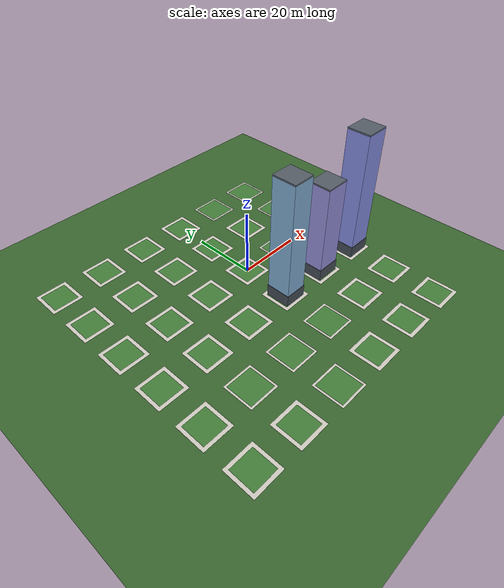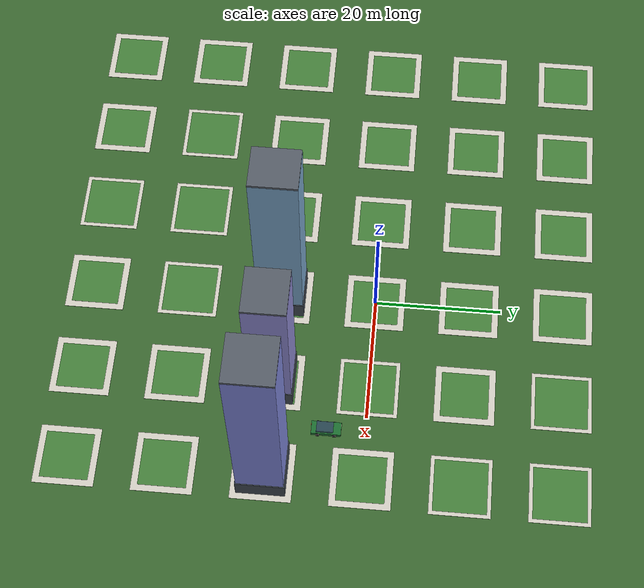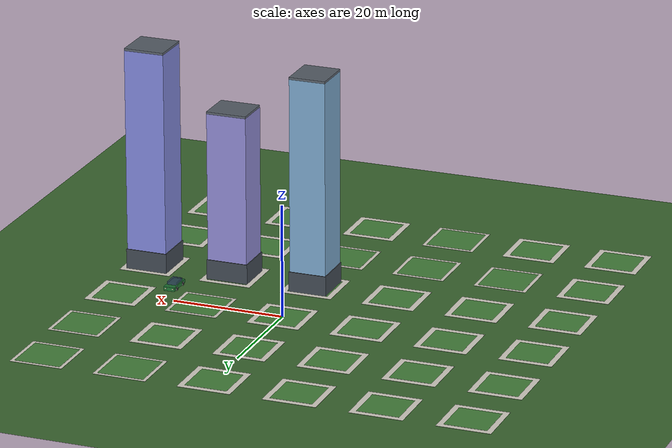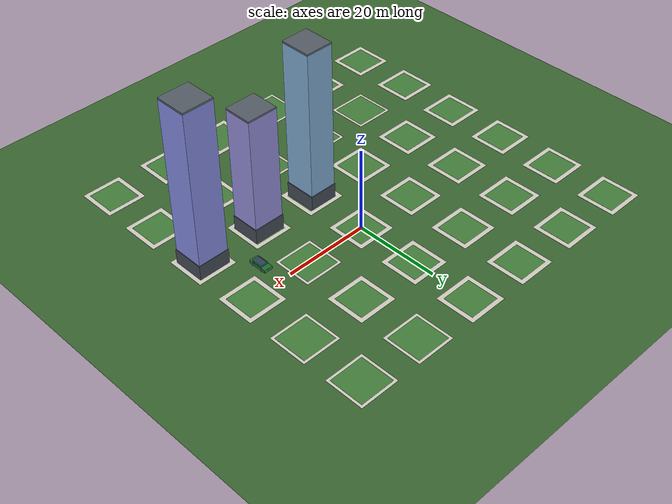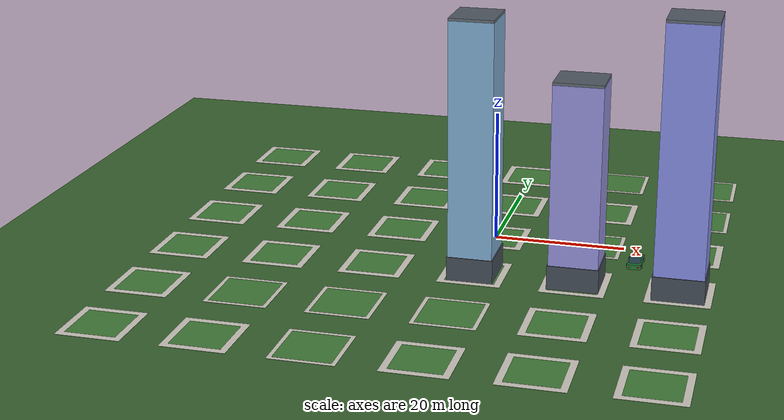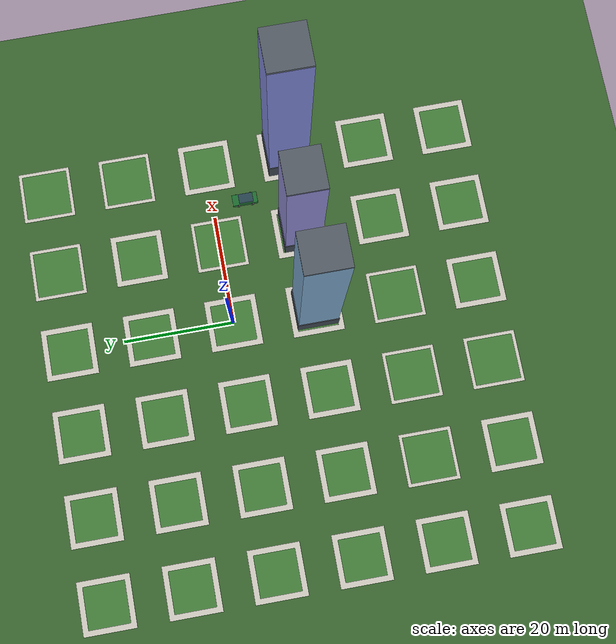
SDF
<sdf version="1.7">
 <world name="city_world">
  <model name="ground_plane">
   <static>true</static>
   <link name="link">
    <collision name="collision">
     <geometry><plane><normal>0 0 1</normal><size>300 300</size></plane></geometry>
     <surface><friction><ode><mu>100</mu><mu2>50</mu2></ode></friction></surface>
    </collision>
    <visual name="visual">
     <geometry><plane><normal>0 0 1</normal><size>300 300</size></plane></geometry>
     <material><ambient>0.24 0.42 0.20 1</ambient><diffuse>0.24 0.42 0.20 1</diffuse></material>
    </visual>
   </link>
  </model>
  <model name="city_sidewalks_and_blocks">
   <static>true</static>
   <link name="link">
    <visual name="curb_0_0">
     <pose>-45.0 -45.0 0.025 0 0 0</pose>
     <geometry><box><size>9.4 9.4 0.04</size></box></geometry>
     <material><ambient>0.82 0.80 0.76 1</ambient><diffuse>0.86 0.84 0.80 1</diffuse></material>
    </visual>
    <visual name="plot_0_0">
     <pose>-45.0 -45.0 0.046 0 0 0</pose>
     <geometry><box><size>7.4 7.4 0.01</size></box></geometry>
     <material><ambient>0.26 0.48 0.22 1</ambient><diffuse>0.28 0.52 0.24 1</diffuse></material>
    </visual>
    <visual name="curb_0_1">
     <pose>-45.0 -30.0 0.025 0 0 0</pose>
     <geometry><box><size>9.4 9.4 0.04</size></box></geometry>
     <material><ambient>0.82 0.80 0.76 1</ambient><diffuse>0.86 0.84 0.80 1</diffuse></material>
    </visual>
    <visual name="plot_0_1">
     <pose>-45.0 -30.0 0.046 0 0 0</pose>
     <geometry><box><size>7.4 7.4 0.01</size></box></geometry>
     <material><ambient>0.26 0.48 0.22 1</ambient><diffuse>0.28 0.52 0.24 1</diffuse></material>
    </visual>
    <visual name="curb_0_2">
     <pose>-45.0 -15.0 0.025 0 0 0</pose>
     <geometry><box><size>9.4 9.4 0.04</size></box></geometry>
     <material><ambient>0.82 0.80 0.76 1</ambient><diffuse>0.86 0.84 0.80 1</diffuse></material>
    </visual>
    <visual name="plot_0_2">
     <pose>-45.0 -15.0 0.046 0 0 0</pose>
     <geometry><box><size>7.4 7.4 0.01</size></box></geometry>
     <material><ambient>0.26 0.48 0.22 1</ambient><diffuse>0.28 0.52 0.24 1</diffuse></material>
    </visual>
    <visual name="curb_0_3">
     <pose>-45.0 0.0 0.025 0 0 0</pose>
     <geometry><box><size>9.4 9.4 0.04</size></box></geometry>
     <material><ambient>0.82 0.80 0.76 1</ambient><diffuse>0.86 0.84 0.80 1</diffuse></material>
    </visual>
    <visual name="plot_0_3">
     <pose>-45.0 0.0 0.046 0 0 0</pose>
     <geometry><box><size>7.4 7.4 0.01</size></box></geometry>
     <material><ambient>0.26 0.48 0.22 1</ambient><diffuse>0.28 0.52 0.24 1</diffuse></material>
    </visual>
    <visual name="curb_0_4">
     <pose>-45.0 15.0 0.025 0 0 0</pose>
     <geometry><box><size>9.4 9.4 0.04</size></box></geometry>
     <material><ambient>0.82 0.80 0.76 1</ambient><diffuse>0.86 0.84 0.80 1</diffuse></material>
    </visual>
    <visual name="plot_0_4">
     <pose>-45.0 15.0 0.046 0 0 0</pose>
     <geometry><box><size>7.4 7.4 0.01</size></box></geometry>
     <material><ambient>0.26 0.48 0.22 1</ambient><diffuse>0.28 0.52 0.24 1</diffuse></material>
    </visual>
    <visual name="curb_0_5">
     <pose>-45.0 30.0 0.025 0 0 0</pose>
     <geometry><box><size>9.4 9.4 0.04</size></box></geometry>
     <material><ambient>0.82 0.80 0.76 1</ambient><diffuse>0.86 0.84 0.80 1</diffuse></material>
    </visual>
    <visual name="plot_0_5">
     <pose>-45.0 30.0 0.046 0 0 0</pose>
     <geometry><box><size>7.4 7.4 0.01</size></box></geometry>
     <material><ambient>0.26 0.48 0.22 1</ambient><diffuse>0.28 0.52 0.24 1</diffuse></material>
    </visual>
    <visual name="curb_1_0">
     <pose>-30.0 -45.0 0.025 0 0 0</pose>
     <geometry><box><size>9.4 9.4 0.04</size></box></geometry>
     <material><ambient>0.82 0.80 0.76 1</ambient><diffuse>0.86 0.84 0.80 1</diffuse></material>
    </visual>
    <visual name="plot_1_0">
     <pose>-30.0 -45.0 0.046 0 0 0</pose>
     <geometry><box><size>7.4 7.4 0.01</size></box></geometry>
     <material><ambient>0.26 0.48 0.22 1</ambient><diffuse>0.28 0.52 0.24 1</diffuse></material>
    </visual>
    <visual name="curb_1_1">
     <pose>-30.0 -30.0 0.025 0 0 0</pose>
     <geometry><box><size>9.4 9.4 0.04</size></box></geometry>
     <material><ambient>0.82 0.80 0.76 1</ambient><diffuse>0.86 0.84 0.80 1</diffuse></material>
    </visual>
    <visual name="plot_1_1">
     <pose>-30.0 -30.0 0.046 0 0 0</pose>
     <geometry><box><size>8.2 8.2 0.01</size></box></geometry>
     <material><ambient>0.22 0.44 0.18 1</ambient><diffuse>0.28 0.52 0.24 1</diffuse></material>
    </visual>
    <visual name="curb_1_2">
     <pose>-30.0 -15.0 0.025 0 0 0</pose>
     <geometry><box><size>9.4 9.4 0.04</size></box></geometry>
     <material><ambient>0.82 0.80 0.76 1</ambient><diffuse>0.86 0.84 0.80 1</diffuse></material>
    </visual>
    <visual name="plot_1_2">
     <pose>-30.0 -15.0 0.046 0 0 0</pose>
     <geometry><box><size>7.4 7.4 0.01</size></box></geometry>
     <material><ambient>0.26 0.48 0.22 1</ambient><diffuse>0.28 0.52 0.24 1</diffuse></material>
    </visual>
    <visual name="curb_1_3">
     <pose>-30.0 0.0 0.025 0 0 0</pose>
     <geometry><box><size>9.4 9.4 0.04</size></box></geometry>
     <material><ambient>0.82 0.80 0.76 1</ambient><diffuse>0.86 0.84 0.80 1</diffuse></material>
    </visual>
    <visual name="plot_1_3">
     <pose>-30.0 0.0 0.046 0 0 0</pose>
     <geometry><box><size>7.4 7.4 0.01</size></box></geometry>
     <material><ambient>0.26 0.48 0.22 1</ambient><diffuse>0.28 0.52 0.24 1</diffuse></material>
    </visual>
    <visual name="curb_1_4">
     <pose>-30.0 15.0 0.025 0 0 0</pose>
     <geometry><box><size>9.4 9.4 0.04</size></box></geometry>
     <material><ambient>0.82 0.80 0.76 1</ambient><diffuse>0.86 0.84 0.80 1</diffuse></material>
    </visual>
    <visual name="plot_1_4">
     <pose>-30.0 15.0 0.046 0 0 0</pose>
     <geometry><box><size>7.4 7.4 0.01</size></box></geometry>
     <material><ambient>0.26 0.48 0.22 1</ambient><diffuse>0.28 0.52 0.24 1</diffuse></material>
    </visual>
    <visual name="curb_1_5">
     <pose>-30.0 30.0 0.025 0 0 0</pose>
     <geometry><box><size>9.4 9.4 0.04</size></box></geometry>
     <material><ambient>0.82 0.80 0.76 1</ambient><diffuse>0.86 0.84 0.80 1</diffuse></material>
    </visual>
    <visual name="plot_1_5">
     <pose>-30.0 30.0 0.046 0 0 0</pose>
     <geometry><box><size>7.4 7.4 0.01</size></box></geometry>
     <material><ambient>0.26 0.48 0.22 1</ambient><diffuse>0.28 0.52 0.24 1</diffuse></material>
    </visual>
    <visual name="curb_2_0">
     <pose>-15.0 -45.0 0.025 0 0 0</pose>
     <geometry><box><size>9.4 9.4 0.04</size></box></geometry>
     <material><ambient>0.82 0.80 0.76 1</ambient><diffuse>0.86 0.84 0.80 1</diffuse></material>
    </visual>
    <visual name="plot_2_0">
     <pose>-15.0 -45.0 0.046 0 0 0</pose>
     <geometry><box><size>8.2 8.2 0.01</size></box></geometry>
     <material><ambient>0.22 0.44 0.18 1</ambient><diffuse>0.28 0.52 0.24 1</diffuse></material>
    </visual>
    <visual name="curb_2_1">
     <pose>-15.0 -30.0 0.025 0 0 0</pose>
     <geometry><box><size>9.4 9.4 0.04</size></box></geometry>
     <material><ambient>0.82 0.80 0.76 1</ambient><diffuse>0.86 0.84 0.80 1</diffuse></material>
    </visual>
    <visual name="plot_2_1">
     <pose>-15.0 -30.0 0.046 0 0 0</pose>
     <geometry><box><size>8.2 8.2 0.01</size></box></geometry>
     <material><ambient>0.22 0.44 0.18 1</ambient><diffuse>0.28 0.52 0.24 1</diffuse></material>
    </visual>
    <visual name="curb_2_2">
     <pose>-15.0 -15.0 0.025 0 0 0</pose>
     <geometry><box><size>9.4 9.4 0.04</size></box></geometry>
     <material><ambient>0.82 0.80 0.76 1</ambient><diffuse>0.86 0.84 0.80 1</diffuse></material>
    </visual>
    <visual name="plot_2_2">
     <pose>-15.0 -15.0 0.046 0 0 0</pose>
     <geometry><box><size>7.4 7.4 0.01</size></box></geometry>
     <material><ambient>0.26 0.48 0.22 1</ambient><diffuse>0.28 0.52 0.24 1</diffuse></material>
    </visual>
    <visual name="curb_2_3">
     <pose>-15.0 0.0 0.025 0 0 0</pose>
     <geometry><box><size>9.4 9.4 0.04</size></box></geometry>
     <material><ambient>0.82 0.80 0.76 1</ambient><diffuse>0.86 0.84 0.80 1</diffuse></material>
    </visual>
    <visual name="plot_2_3">
     <pose>-15.0 0.0 0.046 0 0 0</pose>
     <geometry><box><size>7.4 7.4 0.01</size></box></geometry>
     <material><ambient>0.26 0.48 0.22 1</ambient><diffuse>0.28 0.52 0.24 1</diffuse></material>
    </visual>
    <visual name="curb_2_4">
     <pose>-15.0 15.0 0.025 0 0 0</pose>
     <geometry><box><size>9.4 9.4 0.04</size></box></geometry>
     <material><ambient>0.82 0.80 0.76 1</ambient><diffuse>0.86 0.84 0.80 1</diffuse></material>
    </visual>
    <visual name="plot_2_4">
     <pose>-15.0 15.0 0.046 0 0 0</pose>
     <geometry><box><size>7.4 7.4 0.01</size></box></geometry>
     <material><ambient>0.26 0.48 0.22 1</ambient><diffuse>0.28 0.52 0.24 1</diffuse></material>
    </visual>
    <visual name="curb_2_5">
     <pose>-15.0 30.0 0.025 0 0 0</pose>
     <geometry><box><size>9.4 9.4 0.04</size></box></geometry>
     <material><ambient>0.82 0.80 0.76 1</ambient><diffuse>0.86 0.84 0.80 1</diffuse></material>
    </visual>
    <visual name="plot_2_5">
     <pose>-15.0 30.0 0.046 0 0 0</pose>
     <geometry><box><size>7.4 7.4 0.01</size></box></geometry>
     <material><ambient>0.26 0.48 0.22 1</ambient><diffuse>0.28 0.52 0.24 1</diffuse></material>
    </visual>
    <visual name="curb_3_0">
     <pose>0.0 -45.0 0.025 0 0 0</pose>
     <geometry><box><size>9.4 9.4 0.04</size></box></geometry>
     <material><ambient>0.82 0.80 0.76 1</ambient><diffuse>0.86 0.84 0.80 1</diffuse></material>
    </visual>
    <visual name="plot_3_0">
     <pose>0.0 -45.0 0.046 0 0 0</pose>
     <geometry><box><size>7.4 7.4 0.01</size></box></geometry>
     <material><ambient>0.26 0.48 0.22 1</ambient><diffuse>0.28 0.52 0.24 1</diffuse></material>
    </visual>
    <visual name="curb_3_1">
     <pose>0.0 -30.0 0.025 0 0 0</pose>
     <geometry><box><size>9.4 9.4 0.04</size></box></geometry>
     <material><ambient>0.82 0.80 0.76 1</ambient><diffuse>0.86 0.84 0.80 1</diffuse></material>
    </visual>
    <visual name="plot_3_1">
     <pose>0.0 -30.0 0.046 0 0 0</pose>
     <geometry><box><size>8.2 8.2 0.01</size></box></geometry>
     <material><ambient>0.22 0.44 0.18 1</ambient><diffuse>0.28 0.52 0.24 1</diffuse></material>
    </visual>
    <visual name="curb_3_2">
     <pose>0.0 -15.0 0.025 0 0 0</pose>
     <geometry><box><size>9.4 9.4 0.04</size></box></geometry>
     <material><ambient>0.82 0.80 0.76 1</ambient><diffuse>0.86 0.84 0.80 1</diffuse></material>
    </visual>
    <visual name="plot_3_2">
     <pose>0.0 -15.0 0.046 0 0 0</pose>
     <geometry><box><size>7.4 7.4 0.01</size></box></geometry>
     <material><ambient>0.26 0.48 0.22 1</ambient><diffuse>0.28 0.52 0.24 1</diffuse></material>
    </visual>
    <visual name="curb_3_3">
     <pose>0.0 0.0 0.025 0 0 0</pose>
     <geometry><box><size>9.4 9.4 0.04</size></box></geometry>
     <material><ambient>0.82 0.80 0.76 1</ambient><diffuse>0.86 0.84 0.80 1</diffuse></material>
    </visual>
    <visual name="plot_3_3">
     <pose>0.0 0.0 0.046 0 0 0</pose>
     <geometry><box><size>7.4 7.4 0.01</size></box></geometry>
     <material><ambient>0.26 0.48 0.22 1</ambient><diffuse>0.28 0.52 0.24 1</diffuse></material>
    </visual>
    <visual name="curb_3_4">
     <pose>0.0 15.0 0.025 0 0 0</pose>
     <geometry><box><size>9.4 9.4 0.04</size></box></geometry>
     <material><ambient>0.82 0.80 0.76 1</ambient><diffuse>0.86 0.84 0.80 1</diffuse></material>
    </visual>
    <visual name="plot_3_4">
     <pose>0.0 15.0 0.046 0 0 0</pose>
     <geometry><box><size>7.4 7.4 0.01</size></box></geometry>
     <material><ambient>0.26 0.48 0.22 1</ambient><diffuse>0.28 0.52 0.24 1</diffuse></material>
    </visual>
    <visual name="curb_3_5">
     <pose>0.0 30.0 0.025 0 0 0</pose>
     <geometry><box><size>9.4 9.4 0.04</size></box></geometry>
     <material><ambient>0.82 0.80 0.76 1</ambient><diffuse>0.86 0.84 0.80 1</diffuse></material>
    </visual>
    <visual name="plot_3_5">
     <pose>0.0 30.0 0.046 0 0 0</pose>
     <geometry><box><size>7.4 7.4 0.01</size></box></geometry>
     <material><ambient>0.26 0.48 0.22 1</ambient><diffuse>0.28 0.52 0.24 1</diffuse></material>
    </visual>
    <visual name="curb_4_0">
     <pose>15.0 -45.0 0.025 0 0 0</pose>
     <geometry><box><size>9.4 9.4 0.04</size></box></geometry>
     <material><ambient>0.82 0.80 0.76 1</ambient><diffuse>0.86 0.84 0.80 1</diffuse></material>
    </visual>
    <visual name="plot_4_0">
     <pose>15.0 -45.0 0.046 0 0 0</pose>
     <geometry><box><size>7.4 7.4 0.01</size></box></geometry>
     <material><ambient>0.26 0.48 0.22 1</ambient><diffuse>0.28 0.52 0.24 1</diffuse></material>
    </visual>
    <visual name="curb_4_1">
     <pose>15.0 -30.0 0.025 0 0 0</pose>
     <geometry><box><size>9.4 9.4 0.04</size></box></geometry>
     <material><ambient>0.82 0.80 0.76 1</ambient><diffuse>0.86 0.84 0.80 1</diffuse></material>
    </visual>
    <visual name="plot_4_1">
     <pose>15.0 -30.0 0.046 0 0 0</pose>
     <geometry><box><size>7.4 7.4 0.01</size></box></geometry>
     <material><ambient>0.26 0.48 0.22 1</ambient><diffuse>0.28 0.52 0.24 1</diffuse></material>
    </visual>
    <visual name="curb_4_2">
     <pose>15.0 -15.0 0.025 0 0 0</pose>
     <geometry><box><size>9.4 9.4 0.04</size></box></geometry>
     <material><ambient>0.82 0.80 0.76 1</ambient><diffuse>0.86 0.84 0.80 1</diffuse></material>
    </visual>
    <visual name="plot_4_2">
     <pose>15.0 -15.0 0.046 0 0 0</pose>
     <geometry><box><size>7.4 7.4 0.01</size></box></geometry>
     <material><ambient>0.26 0.48 0.22 1</ambient><diffuse>0.28 0.52 0.24 1</diffuse></material>
    </visual>
    <visual name="curb_4_3">
     <pose>15.0 0.0 0.025 0 0 0</pose>
     <geometry><box><size>9.4 9.4 0.04</size></box></geometry>
     <material><ambient>0.82 0.80 0.76 1</ambient><diffuse>0.86 0.84 0.80 1</diffuse></material>
    </visual>
    <visual name="plot_4_3">
     <pose>15.0 0.0 0.046 0 0 0</pose>
     <geometry><box><size>8.2 8.2 0.01</size></box></geometry>
     <material><ambient>0.22 0.44 0.18 1</ambient><diffuse>0.28 0.52 0.24 1</diffuse></material>
    </visual>
    <visual name="curb_4_4">
     <pose>15.0 15.0 0.025 0 0 0</pose>
     <geometry><box><size>9.4 9.4 0.04</size></box></geometry>
     <material><ambient>0.82 0.80 0.76 1</ambient><diffuse>0.86 0.84 0.80 1</diffuse></material>
    </visual>
    <visual name="plot_4_4">
     <pose>15.0 15.0 0.046 0 0 0</pose>
     <geometry><box><size>7.4 7.4 0.01</size></box></geometry>
     <material><ambient>0.26 0.48 0.22 1</ambient><diffuse>0.28 0.52 0.24 1</diffuse></material>
    </visual>
    <visual name="curb_4_5">
     <pose>15.0 30.0 0.025 0 0 0</pose>
     <geometry><box><size>9.4 9.4 0.04</size></box></geometry>
     <material><ambient>0.82 0.80 0.76 1</ambient><diffuse>0.86 0.84 0.80 1</diffuse></material>
    </visual>
    <visual name="plot_4_5">
     <pose>15.0 30.0 0.046 0 0 0</pose>
     <geometry><box><size>8.2 8.2 0.01</size></box></geometry>
     <material><ambient>0.22 0.44 0.18 1</ambient><diffuse>0.28 0.52 0.24 1</diffuse></material>
    </visual>
    <visual name="curb_5_0">
     <pose>30.0 -45.0 0.025 0 0 0</pose>
     <geometry><box><size>9.4 9.4 0.04</size></box></geometry>
     <material><ambient>0.82 0.80 0.76 1</ambient><diffuse>0.86 0.84 0.80 1</diffuse></material>
    </visual>
    <visual name="plot_5_0">
     <pose>30.0 -45.0 0.046 0 0 0</pose>
     <geometry><box><size>7.4 7.4 0.01</size></box></geometry>
     <material><ambient>0.26 0.48 0.22 1</ambient><diffuse>0.28 0.52 0.24 1</diffuse></material>
    </visual>
    <visual name="curb_5_1">
     <pose>30.0 -30.0 0.025 0 0 0</pose>
     <geometry><box><size>9.4 9.4 0.04</size></box></geometry>
     <material><ambient>0.82 0.80 0.76 1</ambient><diffuse>0.86 0.84 0.80 1</diffuse></material>
    </visual>
    <visual name="plot_5_1">
     <pose>30.0 -30.0 0.046 0 0 0</pose>
     <geometry><box><size>7.4 7.4 0.01</size></box></geometry>
     <material><ambient>0.26 0.48 0.22 1</ambient><diffuse>0.28 0.52 0.24 1</diffuse></material>
    </visual>
    <visual name="curb_5_2">
     <pose>30.0 -15.0 0.025 0 0 0</pose>
     <geometry><box><size>9.4 9.4 0.04</size></box></geometry>
     <material><ambient>0.82 0.80 0.76 1</ambient><diffuse>0.86 0.84 0.80 1</diffuse></material>
    </visual>
    <visual name="plot_5_2">
     <pose>30.0 -15.0 0.046 0 0 0</pose>
     <geometry><box><size>7.4 7.4 0.01</size></box></geometry>
     <material><ambient>0.26 0.48 0.22 1</ambient><diffuse>0.28 0.52 0.24 1</diffuse></material>
    </visual>
    <visual name="curb_5_3">
     <pose>30.0 0.0 0.025 0 0 0</pose>
     <geometry><box><size>9.4 9.4 0.04</size></box></geometry>
     <material><ambient>0.82 0.80 0.76 1</ambient><diffuse>0.86 0.84 0.80 1</diffuse></material>
    </visual>
    <visual name="plot_5_3">
     <pose>30.0 0.0 0.046 0 0 0</pose>
     <geometry><box><size>7.4 7.4 0.01</size></box></geometry>
     <material><ambient>0.26 0.48 0.22 1</ambient><diffuse>0.28 0.52 0.24 1</diffuse></material>
    </visual>
    <visual name="curb_5_4">
     <pose>30.0 15.0 0.025 0 0 0</pose>
     <geometry><box><size>9.4 9.4 0.04</size></box></geometry>
     <material><ambient>0.82 0.80 0.76 1</ambient><diffuse>0.86 0.84 0.80 1</diffuse></material>
    </visual>
    <visual name="plot_5_4">
     <pose>30.0 15.0 0.046 0 0 0</pose>
     <geometry><box><size>8.2 8.2 0.01</size></box></geometry>
     <material><ambient>0.22 0.44 0.18 1</ambient><diffuse>0.28 0.52 0.24 1</diffuse></material>
    </visual>
    <visual name="curb_5_5">
     <pose>30.0 30.0 0.025 0 0 0</pose>
     <geometry><box><size>9.4 9.4 0.04</size></box></geometry>
     <material><ambient>0.82 0.80 0.76 1</ambient><diffuse>0.86 0.84 0.80 1</diffuse></material>
    </visual>
    <visual name="plot_5_5">
     <pose>30.0 30.0 0.046 0 0 0</pose>
     <geometry><box><size>8.2 8.2 0.01</size></box></geometry>
     <material><ambient>0.22 0.44 0.18 1</ambient><diffuse>0.28 0.52 0.24 1</diffuse></material>
    </visual>
   </link>
  </model>
  <model name="car_11">
   <pose>22.5 -6.0 0.01 0 0 1.5708</pose>
   <static>true</static>
   <link name="link">
    <visual name="body">
     <pose>0 0 0.45 0 0 0</pose>
     <geometry><box><size>4.6 2.05 0.7</size></box></geometry>
     <material>
      <ambient>0.12 0.45 0.20 1</ambient>
      <diffuse>0.12 0.45 0.20 1</diffuse>
      <specular>0.5 0.5 0.5 1</specular>
     </material>
    </visual>
    <visual name="cabin">
     <pose>-0.2 0 0.95 0 0 0</pose>
     <geometry><box><size>2.6 1.65 0.75</size></box></geometry>
     <material>
      <ambient>0.22 0.30 0.40 0.85</ambient>
      <diffuse>0.22 0.30 0.40 0.85</diffuse>
      <specular>0.7 0.7 0.7 1</specular>
     </material>
    </visual>
    <visual name="hl_l">
     <pose>2.3 0.65 0.45 0 0 0</pose>
     <geometry><box><size>0.08 0.35 0.18</size></box></geometry>
     <material><ambient>1 1 0.8 1</ambient><diffuse>1 1 0.8 1</diffuse><emissive>1 1 0.8 1</emissive></material>
    </visual>
    <visual name="hl_r">
     <pose>2.3 -0.65 0.45 0 0 0</pose>
     <geometry><box><size>0.08 0.35 0.18</size></box></geometry>
     <material><ambient>1 1 0.8 1</ambient><diffuse>1 1 0.8 1</diffuse><emissive>1 1 0.8 1</emissive></material>
    </visual>
    <visual name="tl_l">
     <pose>-2.3 0.65 0.45 0 0 0</pose>
     <geometry><box><size>0.08 0.35 0.18</size></box></geometry>
     <material>
      <ambient>1 0.1 0.1 1</ambient>
      <diffuse>1 0.1 0.1 1</diffuse>
      <emissive>0.8 0 0 1</emissive>
     </material>
    </visual>
    <visual name="tl_r">
     <pose>-2.3 -0.65 0.45 0 0 0</pose>
     <geometry><box><size>0.08 0.35 0.18</size></box></geometry>
     <material>
      <ambient>1 0.1 0.1 1</ambient>
      <diffuse>1 0.1 0.1 1</diffuse>
      <emissive>0.8 0 0 1</emissive>
     </material>
    </visual>
    <visual name="w_fl">
     <pose>1.3 1.05 0.32 1.5708 0 0</pose>
     <geometry><cylinder><radius>0.32</radius><length>0.22</length></cylinder></geometry>
     <material><ambient>0.1 0.1 0.1 1</ambient><diffuse>0.1 0.1 0.1 1</diffuse></material>
    </visual>
    <visual name="w_fr">
     <pose>1.3 -1.05 0.32 1.5708 0 0</pose>
     <geometry><cylinder><radius>0.32</radius><length>0.22</length></cylinder></geometry>
     <material><ambient>0.1 0.1 0.1 1</ambient><diffuse>0.1 0.1 0.1 1</diffuse></material>
    </visual>
    <visual name="w_bl">
     <pose>-1.3 1.05 0.32 1.5708 0 0</pose>
     <geometry><cylinder><radius>0.32</radius><length>0.22</length></cylinder></geometry>
     <material><ambient>0.1 0.1 0.1 1</ambient><diffuse>0.1 0.1 0.1 1</diffuse></material>
    </visual>
    <visual name="w_br">
     <pose>-1.3 -1.05 0.32 1.5708 0 0</pose>
     <geometry><cylinder><radius>0.32</radius><length>0.22</length></cylinder></geometry>
     <material><ambient>0.1 0.1 0.1 1</ambient><diffuse>0.1 0.1 0.1 1</diffuse></material>
    </visual>
   </link>
  </model>
  <model name="building_16">
   <pose>0.0 -15.0 19.20424167946991 0 0 0</pose>
   <static>true</static>
   <link name="link">
    <collision name="collision"><geometry><box><size>6.51 7.20 38.41</size></box></geometry></collision>
    <visual name="tower">
     <geometry><box><size>6.51 7.20 38.41</size></box></geometry>
     <material>
      <ambient>0.47 0.64 0.78 1</ambient>
      <diffuse>0.47 0.64 0.78 1</diffuse>
      <specular>0.3 0.3 0.3 1</specular>
     </material>
    </visual>
    <visual name="lobby">
     <pose>0 0 -17.40 0 0 0</pose>
     <geometry><box><size>6.81 7.50 3.6</size></box></geometry>
     <material><ambient>0.25 0.28 0.32 1</ambient><diffuse>0.25 0.28 0.32 1</diffuse></material>
    </visual>
    <visual name="parapet">
     <pose>0 0 19.40 0 0 0</pose>
     <geometry><box><size>6.51 7.20 0.4</size></box></geometry>
     <material><ambient>0.35 0.38 0.42 1</ambient><diffuse>0.35 0.38 0.42 1</diffuse></material>
    </visual>
   </link>
  </model>
  <model name="building_22">
   <pose>15.0 -15.0 15.100468209399523 0 0 0</pose>
   <static>true</static>
   <link name="link">
    <collision name="collision"><geometry><box><size>7.20 6.59 30.20</size></box></geometry></collision>
    <visual name="tower">
     <geometry><box><size>7.20 6.59 30.20</size></box></geometry>
     <material>
      <ambient>0.55 0.53 0.81 1</ambient>
      <diffuse>0.55 0.53 0.81 1</diffuse>
      <specular>0.3 0.3 0.3 1</specular>
     </material>
    </visual>
    <visual name="lobby">
     <pose>0 0 -13.30 0 0 0</pose>
     <geometry><box><size>7.50 6.89 3.6</size></box></geometry>
     <material><ambient>0.25 0.28 0.32 1</ambient><diffuse>0.25 0.28 0.32 1</diffuse></material>
    </visual>
    <visual name="parapet">
     <pose>0 0 15.30 0 0 0</pose>
     <geometry><box><size>7.20 6.59 0.4</size></box></geometry>
     <material><ambient>0.35 0.38 0.42 1</ambient><diffuse>0.35 0.38 0.42 1</diffuse></material>
    </visual>
   </link>
  </model>
  <model name="building_26">
   <pose>30.0 -15.0 19.93134034239071 0 0 0</pose>
   <static>true</static>
   <link name="link">
    <collision name="collision"><geometry><box><size>7.20 7.20 39.86</size></box></geometry></collision>
    <visual name="tower">
     <geometry><box><size>7.20 7.20 39.86</size></box></geometry>
     <material>
      <ambient>0.49 0.52 0.84 1</ambient>
      <diffuse>0.49 0.52 0.84 1</diffuse>
      <specular>0.3 0.3 0.3 1</specular>
     </material>
    </visual>
    <visual name="lobby">
     <pose>0 0 -18.13 0 0 0</pose>
     <geometry><box><size>7.50 7.50 3.6</size></box></geometry>
     <material><ambient>0.25 0.28 0.32 1</ambient><diffuse>0.25 0.28 0.32 1</diffuse></material>
    </visual>
    <visual name="parapet">
     <pose>0 0 20.13 0 0 0</pose>
     <geometry><box><size>7.20 7.20 0.4</size></box></geometry>
     <material><ambient>0.35 0.38 0.42 1</ambient><diffuse>0.35 0.38 0.42 1</diffuse></material>
    </visual>
   </link>
  </model>
  <model name="helipad_4">
   <pose>0.0 -15.0 38.5085 0 0 0</pose>
   <static>true</static>
   <link name="link">
    <visual name="pad">
     <geometry><cylinder><radius>2.5</radius><length>0.15</length></cylinder></geometry>
     <material><ambient>1.0 0.82 0.0 1</ambient><diffuse>1.0 0.82 0.0 1</diffuse></material>
    </visual>
    <visual name="ring">
     <pose>0 0 0.02 0 0 0</pose>
     <geometry><cylinder><radius>2.3</radius><length>0.12</length></cylinder></geometry>
     <material><ambient>0.2 0.2 0.2 1</ambient><diffuse>0.2 0.2 0.2 1</diffuse></material>
    </visual>
    <visual name="inner_pad">
     <pose>0 0 0.04 0 0 0</pose>
     <geometry><cylinder><radius>2.0</radius><length>0.10</length></cylinder></geometry>
     <material><ambient>1.0 0.82 0.0 1</ambient><diffuse>1.0 0.82 0.0 1</diffuse></material>
    </visual>
    <visual name="h_bar1">
     <pose>-0.75 0 0.10 0 0 0</pose>
     <geometry><box><size>0.35 1.8 0.02</size></box></geometry>
     <material><ambient>1 1 1 1</ambient><diffuse>1 1 1 1</diffuse></material>
    </visual>
    <visual name="h_bar2">
     <pose>0.75 0 0.10 0 0 0</pose>
     <geometry><box><size>0.35 1.8 0.02</size></box></geometry>
     <material><ambient>1 1 1 1</ambient><diffuse>1 1 1 1</diffuse></material>
    </visual>
    <visual name="h_cross">
     <pose>0 0 0.10 0 0 0</pose>
     <geometry><box><size>1.5 0.35 0.02</size></box></geometry>
     <material><ambient>1 1 1 1</ambient><diffuse>1 1 1 1</diffuse></material>
    </visual>
   </link>
  </model>
  <model name="helipad_6">
   <pose>15.0 -15.0 30.3009 0 0 0</pose>
   <static>true</static>
   <link name="link">
    <visual name="pad">
     <geometry><cylinder><radius>2.5</radius><length>0.15</length></cylinder></geometry>
     <material><ambient>1.0 0.82 0.0 1</ambient><diffuse>1.0 0.82 0.0 1</diffuse></material>
    </visual>
    <visual name="ring">
     <pose>0 0 0.02 0 0 0</pose>
     <geometry><cylinder><radius>2.3</radius><length>0.12</length></cylinder></geometry>
     <material><ambient>0.2 0.2 0.2 1</ambient><diffuse>0.2 0.2 0.2 1</diffuse></material>
    </visual>
    <visual name="inner_pad">
     <pose>0 0 0.04 0 0 0</pose>
     <geometry><cylinder><radius>2.0</radius><length>0.10</length></cylinder></geometry>
     <material><ambient>1.0 0.82 0.0 1</ambient><diffuse>1.0 0.82 0.0 1</diffuse></material>
    </visual>
    <visual name="h_bar1">
     <pose>-0.75 0 0.10 0 0 0</pose>
     <geometry><box><size>0.35 1.8 0.02</size></box></geometry>
     <material><ambient>1 1 1 1</ambient><diffuse>1 1 1 1</diffuse></material>
    </visual>
    <visual name="h_bar2">
     <pose>0.75 0 0.10 0 0 0</pose>
     <geometry><box><size>0.35 1.8 0.02</size></box></geometry>
     <material><ambient>1 1 1 1</ambient><diffuse>1 1 1 1</diffuse></material>
    </visual>
    <visual name="h_cross">
     <pose>0 0 0.10 0 0 0</pose>
     <geometry><box><size>1.5 0.35 0.02</size></box></geometry>
     <material><ambient>1 1 1 1</ambient><diffuse>1 1 1 1</diffuse></material>
    </visual>
   </link>
  </model>
 </world>
</sdf>
